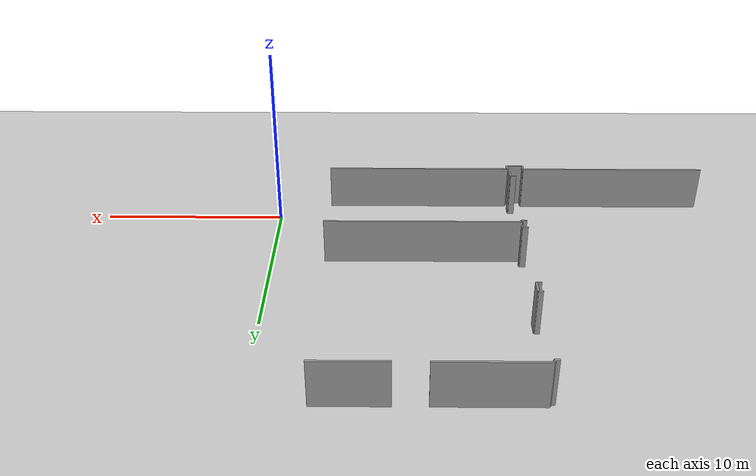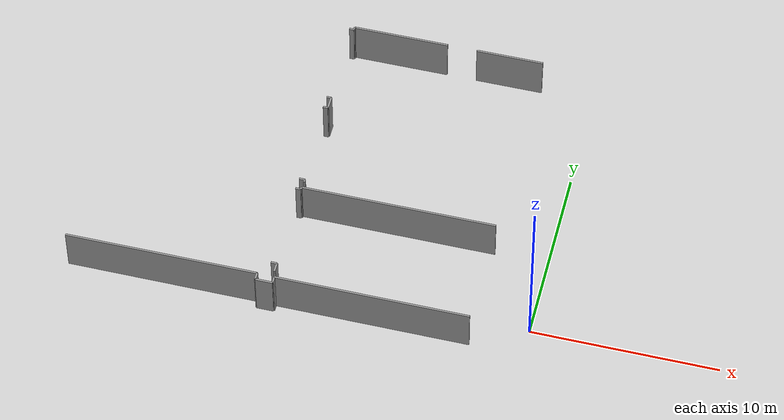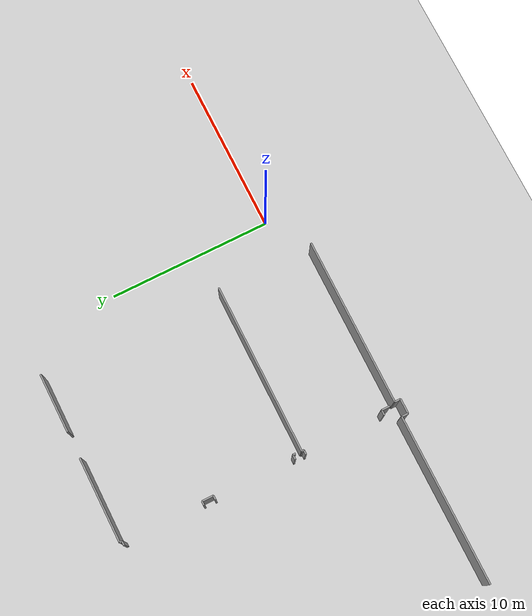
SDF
<sdf version="1.6">
 <world name="default">
  <model name="ground_plane">
   <static>1</static>
   <link name="link">
    <collision name="collision">
     <geometry><plane><normal>0 0 1</normal><size>100 100</size></plane></geometry>
     <surface><friction><ode><mu>100</mu><mu2>50</mu2></ode></friction></surface>
    </collision>
    <visual name="visual">
     <cast_shadows>0</cast_shadows>
     <geometry><plane><normal>0 0 1</normal><size>100 100</size></plane></geometry>
     <material>
      <script><uri>file://media/materials/scripts/gazebo.material</uri><name>Gazebo/Grey</name></script>
     </material>
    </visual>
   </link>
  </model>
  <model name="50015848">
   <static>1</static>
   <link name="Wall_522">
    <collision name="Wall_522_Collision">
     <geometry><box><size>10.3102461798 0.1 2.5</size></box></geometry>
     <pose>5.1551230899 0 1.25 0 0 0</pose>
    </collision>
    <visual name="Wall_522_Visual">
     <pose>5.1551230899 0 1.25 0 0 0</pose>
     <geometry><box><size>10.3102461798 0.1 2.5</size></box></geometry>
     <material>
      <script><uri>file://media/materials/scripts/gazebo.material</uri><name>Gazebo/Grey</name></script>
      <ambient>1 1 1 1</ambient>
     </material>
    </visual>
    <pose>107.398841731 -45.2344131583 0 0 0 0.0</pose>
   </link>
   <link name="Wall_523">
    <collision name="Wall_523_Collision">
     <geometry><box><size>0.400383129611 0.1 2.5</size></box></geometry>
     <pose>0.200191564805 0 1.25 0 0 0</pose>
    </collision>
    <visual name="Wall_523_Visual">
     <pose>0.200191564805 0 1.25 0 0 0</pose>
     <geometry><box><size>0.400383129611 0.1 2.5</size></box></geometry>
     <material>
      <script><uri>file://media/materials/scripts/gazebo.material</uri><name>Gazebo/Grey</name></script>
      <ambient>1 1 1 1</ambient>
     </material>
    </visual>
    <pose>117.70908791 -45.2344131583 0 0 0 -1.57079632679</pose>
   </link>
   <link name="Wall_524">
    <collision name="Wall_524_Collision">
     <geometry><box><size>0.91748123997 0.1 2.5</size></box></geometry>
     <pose>0.458740619985 0 1.25 0 0 0</pose>
    </collision>
    <visual name="Wall_524_Visual">
     <pose>0.458740619985 0 1.25 0 0 0</pose>
     <geometry><box><size>0.91748123997 0.1 2.5</size></box></geometry>
     <material>
      <script><uri>file://media/materials/scripts/gazebo.material</uri><name>Gazebo/Grey</name></script>
      <ambient>1 1 1 1</ambient>
     </material>
    </visual>
    <pose>117.70908791 -45.634796288 0 0 0 0.0</pose>
   </link>
   <link name="Wall_525">
    <collision name="Wall_525_Collision">
     <geometry><box><size>0.3668910047 0.1 2.5</size></box></geometry>
     <pose>0.18344550235 0 1.25 0 0 0</pose>
    </collision>
    <visual name="Wall_525_Visual">
     <pose>0.18344550235 0 1.25 0 0 0</pose>
     <geometry><box><size>0.3668910047 0.1 2.5</size></box></geometry>
     <material>
      <script><uri>file://media/materials/scripts/gazebo.material</uri><name>Gazebo/Grey</name></script>
      <ambient>1 1 1 1</ambient>
     </material>
    </visual>
    <pose>118.62656915 -45.634796288 0 0 0 1.57079632679</pose>
   </link>
   <link name="Wall_526">
    <collision name="Wall_526_Collision">
     <geometry><box><size>10.3183654828 0.1 2.5</size></box></geometry>
     <pose>5.15918274141 0 1.25 0 0 0</pose>
    </collision>
    <visual name="Wall_526_Visual">
     <pose>5.15918274141 0 1.25 0 0 0</pose>
     <geometry><box><size>10.3183654828 0.1 2.5</size></box></geometry>
     <material>
      <script><uri>file://media/materials/scripts/gazebo.material</uri><name>Gazebo/Grey</name></script>
      <ambient>1 1 1 1</ambient>
     </material>
    </visual>
    <pose>118.62656915 -45.2679052833 0 0 0 0.0</pose>
   </link>
   <link name="Wall_792">
    <collision name="Wall_792_Collision">
     <geometry><box><size>0.164415885924 0.1 2.5</size></box></geometry>
     <pose>0.0822079429619 0 1.25 0 0 0</pose>
    </collision>
    <visual name="Wall_792_Visual">
     <pose>0.0822079429619 0 1.25 0 0 0</pose>
     <geometry><box><size>0.164415885924 0.1 2.5</size></box></geometry>
     <material>
      <script><uri>file://media/materials/scripts/gazebo.material</uri><name>Gazebo/Grey</name></script>
      <ambient>1 1 1 1</ambient>
     </material>
    </visual>
    <pose>118.535226992 -38.9787439185 0 0 0 1.57079632679</pose>
   </link>
   <link name="Wall_793">
    <collision name="Wall_793_Collision">
     <geometry><box><size>0.304727591041 0.1 2.5</size></box></geometry>
     <pose>0.15236379552 0 1.25 0 0 0</pose>
    </collision>
    <visual name="Wall_793_Visual">
     <pose>0.15236379552 0 1.25 0 0 0</pose>
     <geometry><box><size>0.304727591041 0.1 2.5</size></box></geometry>
     <material>
      <script><uri>file://media/materials/scripts/gazebo.material</uri><name>Gazebo/Grey</name></script>
      <ambient>1 1 1 1</ambient>
     </material>
    </visual>
    <pose>118.535226992 -38.8143280325 0 0 0 3.14159265359</pose>
   </link>
   <link name="Wall_794">
    <collision name="Wall_794_Collision">
     <geometry><box><size>0.266414629969 0.1 2.5</size></box></geometry>
     <pose>0.133207314985 0 1.25 0 0 0</pose>
    </collision>
    <visual name="Wall_794_Visual">
     <pose>0.133207314985 0 1.25 0 0 0</pose>
     <geometry><box><size>0.266414629969 0.1 2.5</size></box></geometry>
     <material>
      <script><uri>file://media/materials/scripts/gazebo.material</uri><name>Gazebo/Grey</name></script>
      <ambient>1 1 1 1</ambient>
     </material>
    </visual>
    <pose>118.230499401 -33.8661203052 0 0 0 0.0</pose>
   </link>
   <link name="Wall_795">
    <collision name="Wall_795_Collision">
     <geometry><box><size>0.696737689424 0.1 2.5</size></box></geometry>
     <pose>0.348368844712 0 1.25 0 0 0</pose>
    </collision>
    <visual name="Wall_795_Visual">
     <pose>0.348368844712 0 1.25 0 0 0</pose>
     <geometry><box><size>0.696737689424 0.1 2.5</size></box></geometry>
     <material>
      <script><uri>file://media/materials/scripts/gazebo.material</uri><name>Gazebo/Grey</name></script>
      <ambient>1 1 1 1</ambient>
     </material>
    </visual>
    <pose>118.496914031 -33.8661203052 0 0 0 1.57079632679</pose>
   </link>
   <link name="Wall_796">
    <collision name="Wall_796_Collision">
     <geometry><box><size>0.248907382857 0.1 2.5</size></box></geometry>
     <pose>0.124453691428 0 1.25 0 0 0</pose>
    </collision>
    <visual name="Wall_796_Visual">
     <pose>0.124453691428 0 1.25 0 0 0</pose>
     <geometry><box><size>0.248907382857 0.1 2.5</size></box></geometry>
     <material>
      <script><uri>file://media/materials/scripts/gazebo.material</uri><name>Gazebo/Grey</name></script>
      <ambient>1 1 1 1</ambient>
     </material>
    </visual>
    <pose>118.496914031 -33.1693826158 0 0 0 3.14159265359</pose>
   </link>
   <link name="Wall_797">
    <collision name="Wall_797_Collision">
     <geometry><box><size>0.257280414084 0.1 2.5</size></box></geometry>
     <pose>0.128640207042 0 1.25 0 0 0</pose>
    </collision>
    <visual name="Wall_797_Visual">
     <pose>0.128640207042 0 1.25 0 0 0</pose>
     <geometry><box><size>0.257280414084 0.1 2.5</size></box></geometry>
     <material>
      <script><uri>file://media/materials/scripts/gazebo.material</uri><name>Gazebo/Grey</name></script>
      <ambient>1 1 1 1</ambient>
     </material>
    </visual>
    <pose>118.248006648 -28.2922187898 0 0 0 0.0</pose>
   </link>
   <link name="Wall_798">
    <collision name="Wall_798_Collision">
     <geometry><box><size>0.149192192783 0.1 2.5</size></box></geometry>
     <pose>0.0745960963913 0 1.25 0 0 0</pose>
    </collision>
    <visual name="Wall_798_Visual">
     <pose>0.0745960963913 0 1.25 0 0 0</pose>
     <geometry><box><size>0.149192192783 0.1 2.5</size></box></geometry>
     <material>
      <script><uri>file://media/materials/scripts/gazebo.material</uri><name>Gazebo/Grey</name></script>
      <ambient>1 1 1 1</ambient>
     </material>
    </visual>
    <pose>118.505287062 -28.2922187898 0 0 0 1.57079632679</pose>
   </link>
   <link name="Wall_799">
    <collision name="Wall_799_Collision">
     <geometry><box><size>5.18392124276 0.1 2.5</size></box></geometry>
     <pose>2.59196062138 0 1.25 0 0 0</pose>
    </collision>
    <visual name="Wall_799_Visual">
     <pose>2.59196062138 0 1.25 0 0 0</pose>
     <geometry><box><size>5.18392124276 0.1 2.5</size></box></geometry>
     <material>
      <script><uri>file://media/materials/scripts/gazebo.material</uri><name>Gazebo/Grey</name></script>
      <ambient>1 1 1 1</ambient>
     </material>
    </visual>
    <pose>118.505287062 -28.1430265971 0 0 0 0.0</pose>
   </link>
   <link name="Wall_800">
    <collision name="Wall_800_Collision">
     <geometry><box><size>3.6529251692 0.1 2.5</size></box></geometry>
     <pose>1.8264625846 0 1.25 0 0 0</pose>
    </collision>
    <visual name="Wall_800_Visual">
     <pose>1.8264625846 0 1.25 0 0 0</pose>
     <geometry><box><size>3.6529251692 0.1 2.5</size></box></geometry>
     <material>
      <script><uri>file://media/materials/scripts/gazebo.material</uri><name>Gazebo/Grey</name></script>
      <ambient>1 1 1 1</ambient>
     </material>
    </visual>
    <pose>125.302919777 -28.1430265971 0 0 0 0.0</pose>
   </link>
   <link name="Wall_804">
    <collision name="Wall_804_Collision">
     <geometry><box><size>0.514053371731 0.1 2.5</size></box></geometry>
     <pose>0.257026685865 0 1.25 0 0 0</pose>
    </collision>
    <visual name="Wall_804_Visual">
     <pose>0.257026685865 0 1.25 0 0 0</pose>
     <geometry><box><size>0.514053371731 0.1 2.5</size></box></geometry>
     <material>
      <script><uri>file://media/materials/scripts/gazebo.material</uri><name>Gazebo/Grey</name></script>
      <ambient>1 1 1 1</ambient>
     </material>
    </visual>
    <pose>118.535226992 -44.9137006895 0 0 0 1.57079632679</pose>
   </link>
   <link name="Wall_805">
    <collision name="Wall_805_Collision">
     <geometry><box><size>0.319190099525 0.1 2.5</size></box></geometry>
     <pose>0.159595049762 0 1.25 0 0 0</pose>
    </collision>
    <visual name="Wall_805_Visual">
     <pose>0.159595049762 0 1.25 0 0 0</pose>
     <geometry><box><size>0.319190099525 0.1 2.5</size></box></geometry>
     <material>
      <script><uri>file://media/materials/scripts/gazebo.material</uri><name>Gazebo/Grey</name></script>
      <ambient>1 1 1 1</ambient>
     </material>
    </visual>
    <pose>118.535226992 -44.3996473178 0 0 0 3.14159265359</pose>
   </link>
   <link name="Wall_806">
    <collision name="Wall_806_Collision">
     <geometry><box><size>0.275041389416 0.1 2.5</size></box></geometry>
     <pose>0.137520694708 0 1.25 0 0 0</pose>
    </collision>
    <visual name="Wall_806_Visual">
     <pose>0.137520694708 0 1.25 0 0 0</pose>
     <geometry><box><size>0.275041389416 0.1 2.5</size></box></geometry>
     <material>
      <script><uri>file://media/materials/scripts/gazebo.material</uri><name>Gazebo/Grey</name></script>
      <ambient>1 1 1 1</ambient>
     </material>
    </visual>
    <pose>118.216036892 -39.4765586842 0 0 0 0.0</pose>
   </link>
   <link name="Wall_807">
    <collision name="Wall_807_Collision">
     <geometry><box><size>0.13168494567 0.1 2.5</size></box></geometry>
     <pose>0.0658424728352 0 1.25 0 0 0</pose>
    </collision>
    <visual name="Wall_807_Visual">
     <pose>0.0658424728352 0 1.25 0 0 0</pose>
     <geometry><box><size>0.13168494567 0.1 2.5</size></box></geometry>
     <material>
      <script><uri>file://media/materials/scripts/gazebo.material</uri><name>Gazebo/Grey</name></script>
      <ambient>1 1 1 1</ambient>
     </material>
    </visual>
    <pose>118.491078281 -39.4765586842 0 0 0 1.57079632679</pose>
   </link>
   <link name="Wall_808">
    <collision name="Wall_808_Collision">
     <geometry><box><size>10.4581697315 0.1 2.5</size></box></geometry>
     <pose>5.22908486575 0 1.25 0 0 0</pose>
    </collision>
    <visual name="Wall_808_Visual">
     <pose>5.22908486575 0 1.25 0 0 0</pose>
     <geometry><box><size>10.4581697315 0.1 2.5</size></box></geometry>
     <material>
      <script><uri>file://media/materials/scripts/gazebo.material</uri><name>Gazebo/Grey</name></script>
      <ambient>1 1 1 1</ambient>
     </material>
    </visual>
    <pose>118.491078281 -39.3448737385 0 0 0 0.0</pose>
   </link>
   <pose>-131.8 43.7717730528 0 0 0 0</pose>
  </model>
 </world>
</sdf>
